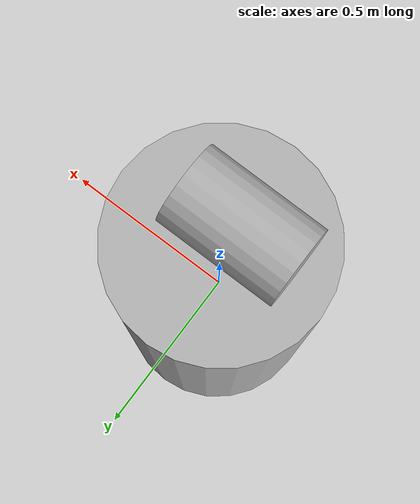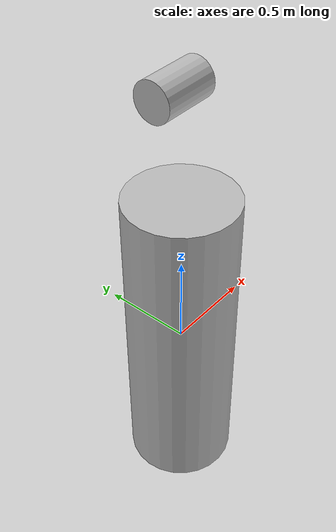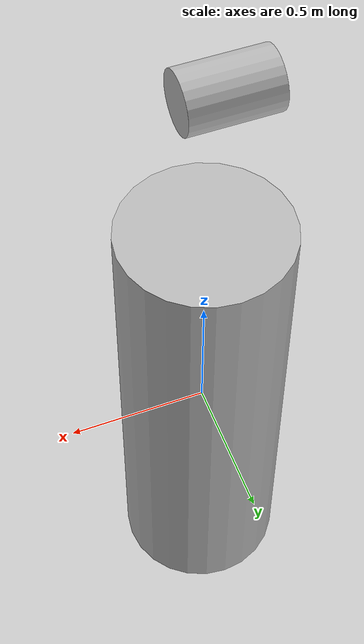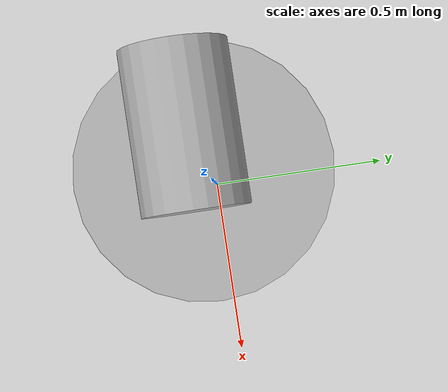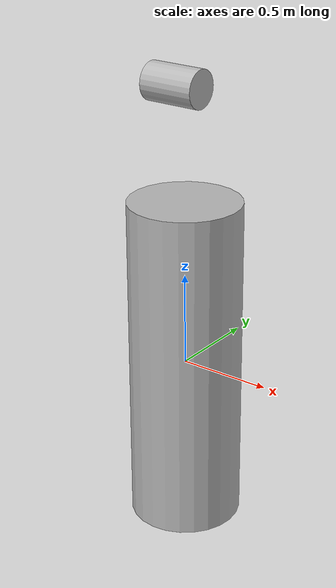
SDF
<?xml version='1.0' ?>
<sdf version='1.6'>
  <world name='test_world'>
    <model name='test_model'>
      <link name='body'>
        <inertial>
          <pose>0.1 0.1 0 0 0 0</pose>
          <mass>60.0</mass>
        </inertial>
        <visual name='vis_body'>
          <pose>0 0 0.01 0 0 0</pose>
          <geometry>
            <cylinder>
              <radius>0.3</radius>
              <length>1.8</length>
            </cylinder>
          </geometry>
        </visual>
        <collision name='col_body'>
          <pose>0 0 0.01 0 0 0</pose>
          <geometry>
            <cylinder>
              <radius>0.3</radius>
              <length>1.8</length>
            </cylinder>
          </geometry>
        </collision>
      </link>
      <link name='arm'>
        <pose>0 0 1.5 -1.5708 0 0</pose>
        <self_collide>0</self_collide>
        <inertial>
          <mass>2.0</mass>
        </inertial>
        <visual name='vis_arm'>
          <pose>-0.05 0 0 0 1.5708 0</pose>
          <geometry>
            <cylinder>
              <radius>0.1</radius>
              <length>0.3</length>
            </cylinder>
          </geometry>
        </visual>
        <collision name='col_arm'>
          <pose>-0.05 0 0 0 1.5708 0</pose>
          <geometry>
            <cylinder>
              <radius>0.1</radius>
              <length>0.3</length>
            </cylinder>
          </geometry>
        </collision>
      </link>
      <joint name='shoulder' type='revolute'>
        <parent>body</parent>
        <child>arm</child>
        <axis>
          <xyz>1.0 0 0</xyz>
        </axis>
      </joint>
    </model>
  </world>
</sdf>
